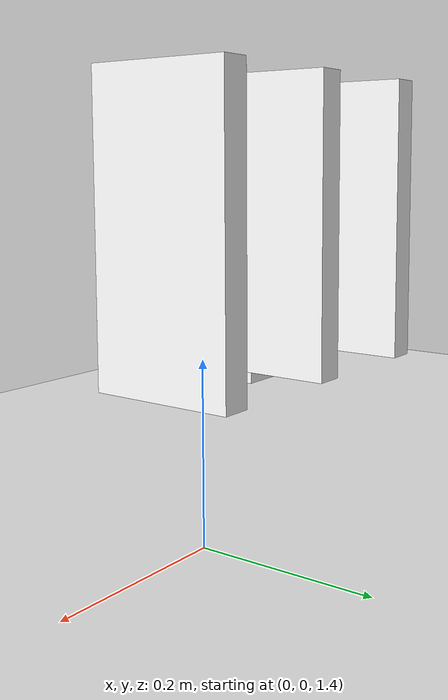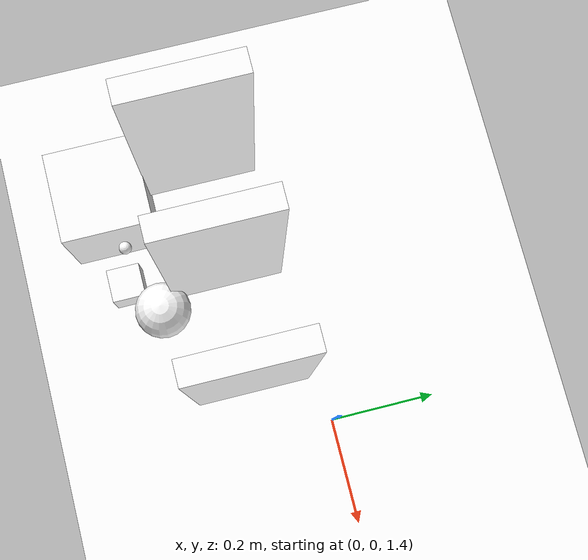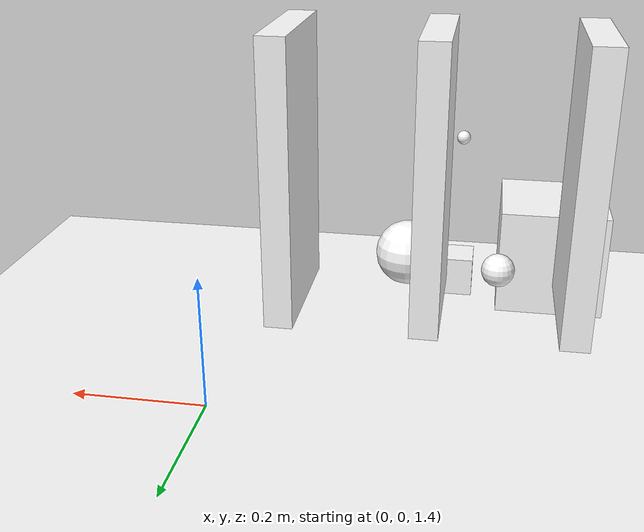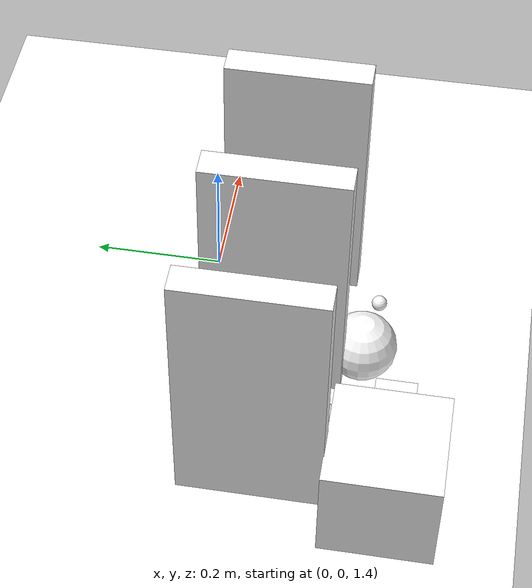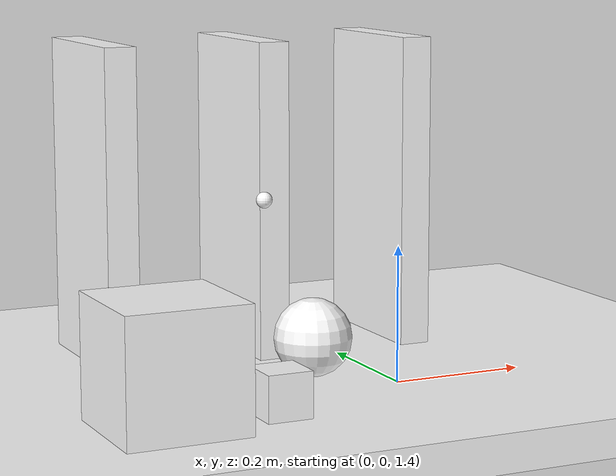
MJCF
<mujoco model="toys_scene">
  <compiler angle="radian" coordinate="local" />
  <option timestep="0.01" gravity="0 0 -9.81" />

  <asset>
    <texture type="2d" name="metal007_color" file="textures/Metal009_2K-PNG/Metal009_2K-PNG_Color.png"/>
    <texture type="2d" name="wood_texture" file="textures/wood_table_worn_2k/textures/wood_table_worn_diff_2k.png"/>
    <texture type="2d" name="oak_veneer" file="textures/oak_veneer_01_2k/textures/oak_veneer_01_diff_2k.png" />
    <material name="metal007_material">
      <rgb texture="metal007_color"/>
    </material>
    <material name="oak_wood_material">
      <rgb texture="oak_veneer"/>
    </material>
    <material name="wood_table_worn_material">
      <rgb texture="wood_texture"/>
    </material>
  </asset>

  <worldbody>
    <light name="spotlight" mode="targetbodycom" target="toys" diffuse=".8 .8 .8" specular="0.3 0.3 0.3" pos="0 -6 4" cutoff="30"/>
    <body name="toys" pos="0 0 1.522">
      <light name="top" pos="0 0 2" mode="trackcom"/>
      <camera name="back" pos="-3 0 1" xyaxes="0 -1 0 1 0 2" mode="trackcom"/>
      <camera name="side" pos="0 -3 1" xyaxes="1 0 0 0 1 2" mode="trackcom"/>

      <body name="Box1" pos="-0.477 -0.312 0.026">
        <geom name="box1_geom" type="box" size="0.08 0.08 0.08" material="wood_table_worn_material" density="1000" condim="3" contype="1" conaffinity="1" />
      </body>

      <body name="Box1_small" pos="-0.328 -0.312 -0.026">
        <geom name="box1_small_geom" type="box" size="0.03 0.03 0.03" material="wood_table_worn_material" density="1000" condim="3" contype="1" conaffinity="1" />
      </body>

      <body name="Box2" pos="-0.328 0 -0.081">
        <geom name="box2_geom" type="box" size="2.5 0.5 0.025" material="wood_table_worn_material" density="1000" condim="3" contype="1" conaffinity="1" />
      </body>

      <body name="Sphere1" pos="-0.258 -0.256 0.024">
        <geom name="Sphere1_geom" type="sphere" size="0.05" material="metal007_material" density="500" contype="1" conaffinity="1" />
      </body>

      <body name="Sphere1_small" pos="-0.397 -0.217 0.021">
        <geom name="Sphere1_small_geom" type="sphere" size="0.025" material="metal007_material" density="500" contype="1" conaffinity="1" />
      </body>

      <body name="Sphere1_small_small" pos="-0.334 -0.278 0.207">
        <geom name="Sphere1_small_small_geom" type="sphere" size="0.01" material="metal007_material" density="500" contype="1" conaffinity="1" />
      </body>

      <body name="Card1" pos="-0.5 -0.133 0.195">
        <geom name="Card1" type="box" size="0.2 0.1 0.02" material="oak_wood_material" density="500" contype="1" conaffinity="1" quat="0 0.707 0 0.707"/>
      </body>

      <body name="Card2" pos="-0.3 -0.133 0.195">
        <geom name="Card2" type="box" size="0.2 0.1 0.02" material="oak_wood_material" density="500" contype="1" conaffinity="1" quat="0 0.707 0 0.707"/>
      </body>

      <body name="Card3" pos="-0.1 -0.133 0.195">
        <geom name="Card3" type="box" size="0.2 0.1 0.02" material="oak_wood_material" density="500" contype="1" conaffinity="1" quat="0 0.707 0 0.707"/>
      </body>
    </body>
  </worldbody>
</mujoco>
